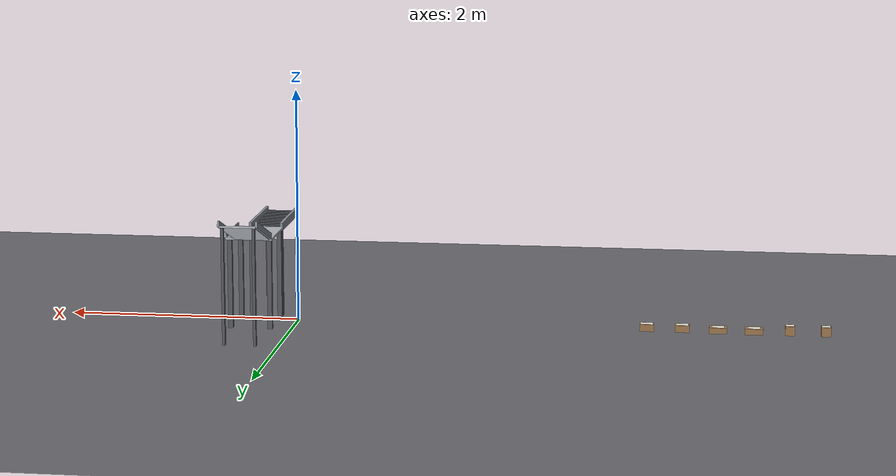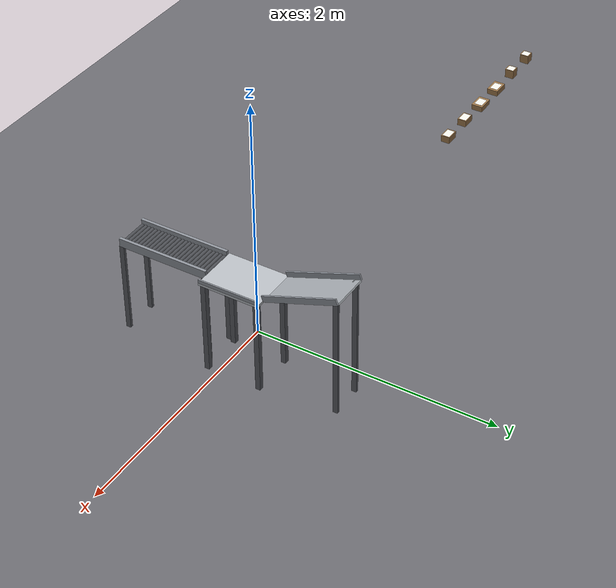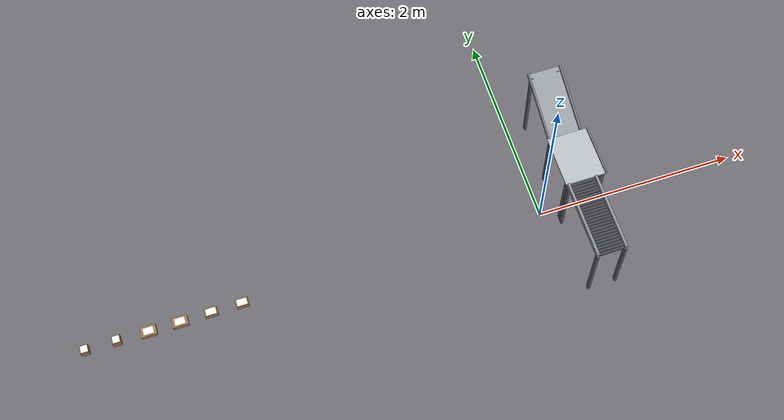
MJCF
<mujoco model="g1_conveyor">
  <include file="g1_upper.xml"/>

  <!-- timestep is overridden at load time by the app (?dt=...) -->
  <option timestep="0.002" integrator="implicitfast" cone="elliptic" impratio="10"/>

  <default>
    <default class="touchable">
      <geom solref="0.01 1" priority="1"/>
    </default>
    <default class="object">
      <geom solref="0.01 1" priority="2"/>
    </default>
    <default class="roller">
      <geom type="cylinder" size="0.014 0.12" quat="0.7071068 0 0.7071068 0" condim="3" friction="0.9 0.005 0.0001" solref="0.01 1" priority="1" material="roller"/>
    </default>
    <default class="label">
      <geom type="box" contype="0" conaffinity="0" density="0"/>
    </default>
  </default>

  <asset>
    <material name="floor" rgba="0.42 0.42 0.44 1"/>
    <material name="roller" rgba="0.3 0.31 0.33 1"/>
    <material name="rail" rgba="0.55 0.57 0.6 1"/>
    <material name="leg" rgba="0.35 0.36 0.38 1"/>
    <material name="plate" rgba="0.72 0.74 0.76 1"/>
    <material name="chute" rgba="0.66 0.68 0.7 1"/>
    <material name="cardboard" rgba="0.62 0.47 0.3 1"/>
    <material name="label" rgba="0.95 0.95 0.92 1"/>
  </asset>

  <worldbody>
    <geom name="floor" type="plane" size="0 0 0.05" material="floor"/>

    <!-- gravity chute: low-friction sheet; priority 3 so its friction, not the parcel's, applies -->
    <body name="chute" pos="0.32 0 0">
      <geom name="chute_slide" type="box" size="0.15 0.3195 0.0075" pos="0 0.6826 0.893" quat="0.984601 0.174819 0 0" solref="0.01 1" priority="3" friction="0.25 0.005 0.0001" material="chute"/>
      <geom name="chute_rail0" type="box" size="0.008 0.3195 0.025" pos="-0.158 0.674 0.9164" quat="0.984601 0.174819 0 0" solref="0.01 1" priority="3" friction="0.25" material="rail"/>
      <geom name="chute_rail1" type="box" size="0.008 0.3195 0.025" pos="0.158 0.674 0.9164" quat="0.984601 0.174819 0 0" solref="0.01 1" priority="3" friction="0.25" material="rail"/>
      <geom type="box" size="0.012 0.02 0.4975" pos="-0.13 0.95 0.4975" material="leg"/>
      <geom type="box" size="0.012 0.02 0.4975" pos="0.13 0.95 0.4975" material="leg"/>
    </body>

    <!-- flat work plate: sheet metal on a frame -->
    <body name="plate" pos="0.35 0.13 0">
      <geom name="plate_top" type="box" size="0.2 0.25 0.01" pos="0 0 0.78" class="touchable" material="plate"/>
      <geom name="plate_lip" type="box" size="0.006 0.25 0.015" pos="0.194 0 0.805" class="touchable" material="rail"/>
      <geom type="box" size="0.02 0.02 0.385" pos="-0.17 -0.22 0.385" material="leg"/>
      <geom type="box" size="0.02 0.02 0.385" pos="-0.17 0.22 0.385" material="leg"/>
      <geom type="box" size="0.02 0.02 0.385" pos="0.17 -0.22 0.385" material="leg"/>
      <geom type="box" size="0.02 0.02 0.385" pos="0.17 0.22 0.385" material="leg"/>
    </body>

    <!-- belt_out: 25 driven rollers, surface at z=0.79, running toward the robot's right (-y) -->
    <body name="belt_out_frame" pos="0.305 0 0">
      <geom class="touchable" type="box" size="0.012 0.375 0.035" pos="-0.135 -0.500 0.786" material="rail"/>
      <geom type="box" size="0.012 0.02 0.376" pos="-0.135 -0.860 0.376" material="leg"/>
      <geom type="box" size="0.012 0.02 0.376" pos="-0.135 -0.140 0.376" material="leg"/>
      <geom class="touchable" type="box" size="0.012 0.375 0.035" pos="0.135 -0.500 0.786" material="rail"/>
      <geom type="box" size="0.012 0.02 0.376" pos="0.135 -0.860 0.376" material="leg"/>
      <geom type="box" size="0.012 0.02 0.376" pos="0.135 -0.140 0.376" material="leg"/>
    </body>
    <body name="belt_out_roller0" pos="0.305 -0.140 0.776">
      <joint name="belt_out_roller0" type="hinge" axis="1 0 0" damping="0.001"/>
      <geom class="roller" name="belt_out_roller0"/>
    </body>
    <body name="belt_out_roller1" pos="0.305 -0.170 0.776">
      <joint name="belt_out_roller1" type="hinge" axis="1 0 0" damping="0.001"/>
      <geom class="roller" name="belt_out_roller1"/>
    </body>
    <body name="belt_out_roller2" pos="0.305 -0.200 0.776">
      <joint name="belt_out_roller2" type="hinge" axis="1 0 0" damping="0.001"/>
      <geom class="roller" name="belt_out_roller2"/>
    </body>
    <body name="belt_out_roller3" pos="0.305 -0.230 0.776">
      <joint name="belt_out_roller3" type="hinge" axis="1 0 0" damping="0.001"/>
      <geom class="roller" name="belt_out_roller3"/>
    </body>
    <body name="belt_out_roller4" pos="0.305 -0.260 0.776">
      <joint name="belt_out_roller4" type="hinge" axis="1 0 0" damping="0.001"/>
      <geom class="roller" name="belt_out_roller4"/>
    </body>
    <body name="belt_out_roller5" pos="0.305 -0.290 0.776">
      <joint name="belt_out_roller5" type="hinge" axis="1 0 0" damping="0.001"/>
      <geom class="roller" name="belt_out_roller5"/>
    </body>
    <body name="belt_out_roller6" pos="0.305 -0.320 0.776">
      <joint name="belt_out_roller6" type="hinge" axis="1 0 0" damping="0.001"/>
      <geom class="roller" name="belt_out_roller6"/>
    </body>
    <body name="belt_out_roller7" pos="0.305 -0.350 0.776">
      <joint name="belt_out_roller7" type="hinge" axis="1 0 0" damping="0.001"/>
      <geom class="roller" name="belt_out_roller7"/>
    </body>
    <body name="belt_out_roller8" pos="0.305 -0.380 0.776">
      <joint name="belt_out_roller8" type="hinge" axis="1 0 0" damping="0.001"/>
      <geom class="roller" name="belt_out_roller8"/>
    </body>
    <body name="belt_out_roller9" pos="0.305 -0.410 0.776">
      <joint name="belt_out_roller9" type="hinge" axis="1 0 0" damping="0.001"/>
      <geom class="roller" name="belt_out_roller9"/>
    </body>
    <body name="belt_out_roller10" pos="0.305 -0.440 0.776">
      <joint name="belt_out_roller10" type="hinge" axis="1 0 0" damping="0.001"/>
      <geom class="roller" name="belt_out_roller10"/>
    </body>
    <body name="belt_out_roller11" pos="0.305 -0.470 0.776">
      <joint name="belt_out_roller11" type="hinge" axis="1 0 0" damping="0.001"/>
      <geom class="roller" name="belt_out_roller11"/>
    </body>
    <body name="belt_out_roller12" pos="0.305 -0.500 0.776">
      <joint name="belt_out_roller12" type="hinge" axis="1 0 0" damping="0.001"/>
      <geom class="roller" name="belt_out_roller12"/>
    </body>
    <body name="belt_out_roller13" pos="0.305 -0.530 0.776">
      <joint name="belt_out_roller13" type="hinge" axis="1 0 0" damping="0.001"/>
      <geom class="roller" name="belt_out_roller13"/>
    </body>
    <body name="belt_out_roller14" pos="0.305 -0.560 0.776">
      <joint name="belt_out_roller14" type="hinge" axis="1 0 0" damping="0.001"/>
      <geom class="roller" name="belt_out_roller14"/>
    </body>
    <body name="belt_out_roller15" pos="0.305 -0.590 0.776">
      <joint name="belt_out_roller15" type="hinge" axis="1 0 0" damping="0.001"/>
      <geom class="roller" name="belt_out_roller15"/>
    </body>
    <body name="belt_out_roller16" pos="0.305 -0.620 0.776">
      <joint name="belt_out_roller16" type="hinge" axis="1 0 0" damping="0.001"/>
      <geom class="roller" name="belt_out_roller16"/>
    </body>
    <body name="belt_out_roller17" pos="0.305 -0.650 0.776">
      <joint name="belt_out_roller17" type="hinge" axis="1 0 0" damping="0.001"/>
      <geom class="roller" name="belt_out_roller17"/>
    </body>
    <body name="belt_out_roller18" pos="0.305 -0.680 0.776">
      <joint name="belt_out_roller18" type="hinge" axis="1 0 0" damping="0.001"/>
      <geom class="roller" name="belt_out_roller18"/>
    </body>
    <body name="belt_out_roller19" pos="0.305 -0.710 0.776">
      <joint name="belt_out_roller19" type="hinge" axis="1 0 0" damping="0.001"/>
      <geom class="roller" name="belt_out_roller19"/>
    </body>
    <body name="belt_out_roller20" pos="0.305 -0.740 0.776">
      <joint name="belt_out_roller20" type="hinge" axis="1 0 0" damping="0.001"/>
      <geom class="roller" name="belt_out_roller20"/>
    </body>
    <body name="belt_out_roller21" pos="0.305 -0.770 0.776">
      <joint name="belt_out_roller21" type="hinge" axis="1 0 0" damping="0.001"/>
      <geom class="roller" name="belt_out_roller21"/>
    </body>
    <body name="belt_out_roller22" pos="0.305 -0.800 0.776">
      <joint name="belt_out_roller22" type="hinge" axis="1 0 0" damping="0.001"/>
      <geom class="roller" name="belt_out_roller22"/>
    </body>
    <body name="belt_out_roller23" pos="0.305 -0.830 0.776">
      <joint name="belt_out_roller23" type="hinge" axis="1 0 0" damping="0.001"/>
      <geom class="roller" name="belt_out_roller23"/>
    </body>
    <body name="belt_out_roller24" pos="0.305 -0.860 0.776">
      <joint name="belt_out_roller24" type="hinge" axis="1 0 0" damping="0.001"/>
      <geom class="roller" name="belt_out_roller24"/>
    </body>

    <body name="package0" pos="-3.0 0 0.031">
      <freejoint name="package0_free"/>
      <geom name="package0" class="object" type="box" size="0.06 0.04 0.03" mass="0.4" condim="4" friction="0.7 0.01 0.0005" material="cardboard"/>
      <geom name="label0" class="label" size="0.05 0.034 0.0002" pos="0 0 0.0302" material="label"/>
    </body>
    <body name="package1" pos="-3.3 0 0.031">
      <freejoint name="package1_free"/>
      <geom name="package1" class="object" type="box" size="0.06 0.04 0.03" mass="0.4" condim="4" friction="0.7 0.01 0.0005" material="cardboard"/>
      <geom name="label1" class="label" size="0.05 0.034 0.0002" pos="0 0 0.0302" material="label"/>
    </body>
    <body name="package2" pos="-3.6 0 0.026">
      <freejoint name="package2_free"/>
      <geom name="package2" class="object" type="box" size="0.075 0.05 0.025" mass="0.4" condim="4" friction="0.7 0.01 0.0005" material="cardboard"/>
      <geom name="label2" class="label" size="0.05 0.035 0.0002" pos="0 0 0.0252" material="label"/>
    </body>
    <body name="package3" pos="-3.9 0 0.026">
      <freejoint name="package3_free"/>
      <geom name="package3" class="object" type="box" size="0.075 0.05 0.025" mass="0.4" condim="4" friction="0.7 0.01 0.0005" material="cardboard"/>
      <geom name="label3" class="label" size="0.05 0.035 0.0002" pos="0 0 0.0252" material="label"/>
    </body>
    <body name="package4" pos="-4.2 0 0.041">
      <freejoint name="package4_free"/>
      <geom name="package4" class="object" type="box" size="0.04 0.04 0.04" mass="0.4" condim="4" friction="0.7 0.01 0.0005" material="cardboard"/>
      <geom name="label4" class="label" size="0.034 0.034 0.0002" pos="0 0 0.0402" material="label"/>
    </body>
    <body name="package5" pos="-4.5 0 0.041">
      <freejoint name="package5_free"/>
      <geom name="package5" class="object" type="box" size="0.04 0.04 0.04" mass="0.4" condim="4" friction="0.7 0.01 0.0005" material="cardboard"/>
      <geom name="label5" class="label" size="0.034 0.034 0.0002" pos="0 0 0.0402" material="label"/>
    </body>
  </worldbody>

  <actuator>
    <velocity name="belt_out_roller0" joint="belt_out_roller0" kv="0.3" ctrlrange="-15 15"/>
    <velocity name="belt_out_roller1" joint="belt_out_roller1" kv="0.3" ctrlrange="-15 15"/>
    <velocity name="belt_out_roller2" joint="belt_out_roller2" kv="0.3" ctrlrange="-15 15"/>
    <velocity name="belt_out_roller3" joint="belt_out_roller3" kv="0.3" ctrlrange="-15 15"/>
    <velocity name="belt_out_roller4" joint="belt_out_roller4" kv="0.3" ctrlrange="-15 15"/>
    <velocity name="belt_out_roller5" joint="belt_out_roller5" kv="0.3" ctrlrange="-15 15"/>
    <velocity name="belt_out_roller6" joint="belt_out_roller6" kv="0.3" ctrlrange="-15 15"/>
    <velocity name="belt_out_roller7" joint="belt_out_roller7" kv="0.3" ctrlrange="-15 15"/>
    <velocity name="belt_out_roller8" joint="belt_out_roller8" kv="0.3" ctrlrange="-15 15"/>
    <velocity name="belt_out_roller9" joint="belt_out_roller9" kv="0.3" ctrlrange="-15 15"/>
    <velocity name="belt_out_roller10" joint="belt_out_roller10" kv="0.3" ctrlrange="-15 15"/>
    <velocity name="belt_out_roller11" joint="belt_out_roller11" kv="0.3" ctrlrange="-15 15"/>
    <velocity name="belt_out_roller12" joint="belt_out_roller12" kv="0.3" ctrlrange="-15 15"/>
    <velocity name="belt_out_roller13" joint="belt_out_roller13" kv="0.3" ctrlrange="-15 15"/>
    <velocity name="belt_out_roller14" joint="belt_out_roller14" kv="0.3" ctrlrange="-15 15"/>
    <velocity name="belt_out_roller15" joint="belt_out_roller15" kv="0.3" ctrlrange="-15 15"/>
    <velocity name="belt_out_roller16" joint="belt_out_roller16" kv="0.3" ctrlrange="-15 15"/>
    <velocity name="belt_out_roller17" joint="belt_out_roller17" kv="0.3" ctrlrange="-15 15"/>
    <velocity name="belt_out_roller18" joint="belt_out_roller18" kv="0.3" ctrlrange="-15 15"/>
    <velocity name="belt_out_roller19" joint="belt_out_roller19" kv="0.3" ctrlrange="-15 15"/>
    <velocity name="belt_out_roller20" joint="belt_out_roller20" kv="0.3" ctrlrange="-15 15"/>
    <velocity name="belt_out_roller21" joint="belt_out_roller21" kv="0.3" ctrlrange="-15 15"/>
    <velocity name="belt_out_roller22" joint="belt_out_roller22" kv="0.3" ctrlrange="-15 15"/>
    <velocity name="belt_out_roller23" joint="belt_out_roller23" kv="0.3" ctrlrange="-15 15"/>
    <velocity name="belt_out_roller24" joint="belt_out_roller24" kv="0.3" ctrlrange="-15 15"/>
  </actuator>
</mujoco>

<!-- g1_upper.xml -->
<!-- Generated by scripts/build-g1-mjcf.py from MuJoCo Menagerie unitree_g1/g1_with_hands.xml (commit 0059d4335f8156206f63a35662313385f7ad6d74, BSD-3-Clause, see LICENSE-g1). Do not edit by hand. -->
<mujoco model="g1_29dof_with_hand_fixed_base">
  <compiler angle="radian" meshdir="meshes" />
  <option integrator="implicitfast" />
  <default>
    <default class="g1">
      <site rgba="1 0 0 1" size="0.01" group="5" />
      <joint armature="0.01" frictionloss="0.3" />
      <position inheritrange="1" />
      <default class="visual">
        <geom group="2" type="mesh" contype="0" conaffinity="0" density="0" material="metal" />
      </default>
      <default class="collision">
        <geom group="3" type="mesh" />
        <default class="foot">
          <geom type="sphere" size="0.005" priority="1" friction="0.6" condim="3" />
        </default>
      </default>
    </default>
  </default>
  <asset>
    <material name="black" rgba="0.2 0.2 0.2 1" />
    <material name="metal" rgba="0.7 0.7 0.7 1" />
    <mesh name="head_link_hull" file="hulls/head_link.STL" />
    <mesh name="left_elbow_link_hull" file="hulls/left_elbow_link.STL" />
    <mesh name="left_hand_index_0_link_hull" file="hulls/left_hand_index_0_link.STL" />
    <mesh name="left_hand_index_1_link_hull" file="hulls/left_hand_index_1_link.STL" />
    <mesh name="left_hand_middle_0_link_hull" file="hulls/left_hand_middle_0_link.STL" />
    <mesh name="left_hand_middle_1_link_hull" file="hulls/left_hand_middle_1_link.STL" />
    <mesh name="left_hand_palm_link_hull" file="hulls/left_hand_palm_link.STL" />
    <mesh name="left_hand_thumb_0_link_hull" file="hulls/left_hand_thumb_0_link.STL" />
    <mesh name="left_hand_thumb_2_link_hull" file="hulls/left_hand_thumb_2_link.STL" />
    <mesh name="left_shoulder_yaw_link_hull" file="hulls/left_shoulder_yaw_link.STL" />
    <mesh name="left_wrist_pitch_link_hull" file="hulls/left_wrist_pitch_link.STL" />
    <mesh name="left_wrist_roll_link_hull" file="hulls/left_wrist_roll_link.STL" />
    <mesh name="left_wrist_yaw_link_hull" file="hulls/left_wrist_yaw_link.STL" />
    <mesh name="pelvis_contour_link_hull" file="hulls/pelvis_contour_link.STL" />
    <mesh name="right_elbow_link_hull" file="hulls/right_elbow_link.STL" />
    <mesh name="right_hand_index_0_link_hull" file="hulls/right_hand_index_0_link.STL" />
    <mesh name="right_hand_index_1_link_hull" file="hulls/right_hand_index_1_link.STL" />
    <mesh name="right_hand_middle_0_link_hull" file="hulls/right_hand_middle_0_link.STL" />
    <mesh name="right_hand_middle_1_link_hull" file="hulls/right_hand_middle_1_link.STL" />
    <mesh name="right_hand_palm_link_hull" file="hulls/right_hand_palm_link.STL" />
    <mesh name="right_hand_thumb_0_link_hull" file="hulls/right_hand_thumb_0_link.STL" />
    <mesh name="right_hand_thumb_2_link_hull" file="hulls/right_hand_thumb_2_link.STL" />
    <mesh name="right_shoulder_yaw_link_hull" file="hulls/right_shoulder_yaw_link.STL" />
    <mesh name="right_wrist_pitch_link_hull" file="hulls/right_wrist_pitch_link.STL" />
    <mesh name="right_wrist_roll_link_hull" file="hulls/right_wrist_roll_link.STL" />
    <mesh name="right_wrist_yaw_link_hull" file="hulls/right_wrist_yaw_link.STL" />
    <mesh name="torso_link_hull" file="hulls/torso_link.STL" />
  </asset>
  <worldbody>
    <light pos="1 0 3.5" dir="0 0 -1" directional="true" />
    <body name="pelvis" pos="0 0 0.793" childclass="g1">
      <inertial pos="0 0 -0.07605" quat="1 0 -0.000399148 0" mass="3.813" diaginertia="0.010549 0.0093089 0.0079184" />
      <geom class="collision" mesh="pelvis_contour_link_hull" />
      <site name="imu_in_pelvis" size="0.01" pos="0.04525 0 -0.08339" />
      <body name="left_hip_pitch_link" pos="0 0.064452 -0.1027">
        <inertial pos="0.002741 0.047791 -0.02606" quat="0.954862 0.293964 0.0302556 0.030122" mass="1.35" diaginertia="0.00181517 0.00153422 0.00116212" />
        <body name="left_hip_roll_link" pos="0 0.052 -0.030465" quat="0.996179 0 -0.0873386 0">
          <inertial pos="0.029812 -0.001045 -0.087934" quat="0.977808 -1.97119e-05 0.205576 -0.0403793" mass="1.52" diaginertia="0.00254986 0.00241169 0.00148755" />
          <body name="left_hip_yaw_link" pos="0.025001 0 -0.12412">
            <inertial pos="-0.057709 -0.010981 -0.15078" quat="0.600598 0.15832 0.223482 0.751181" mass="1.702" diaginertia="0.00776166 0.00717575 0.00160139" />
            <body name="left_knee_link" pos="-0.078273 0.0021489 -0.17734" quat="0.996179 0 0.0873386 0">
              <inertial pos="0.005457 0.003964 -0.12074" quat="0.923418 -0.0327699 0.0158246 0.382067" mass="1.932" diaginertia="0.0113804 0.0112778 0.00146458" />
              <body name="left_ankle_pitch_link" pos="0 -9.4445e-05 -0.30001">
                <inertial pos="-0.007269 0 0.011137" quat="0.603053 0.369225 0.369225 0.603053" mass="0.074" diaginertia="1.89e-05 1.40805e-05 6.9195e-06" />
                <body name="left_ankle_roll_link" pos="0 0 -0.017558">
                  <inertial pos="0.026505 0 -0.016425" quat="-0.000481092 0.728482 -0.000618967 0.685065" mass="0.608" diaginertia="0.00167218 0.0016161 0.000217621" />
                </body>
              </body>
            </body>
          </body>
        </body>
      </body>
      <body name="right_hip_pitch_link" pos="0 -0.064452 -0.1027">
        <inertial pos="0.002741 -0.047791 -0.02606" quat="0.954862 -0.293964 0.0302556 -0.030122" mass="1.35" diaginertia="0.00181517 0.00153422 0.00116212" />
        <body name="right_hip_roll_link" pos="0 -0.052 -0.030465" quat="0.996179 0 -0.0873386 0">
          <inertial pos="0.029812 0.001045 -0.087934" quat="0.977808 1.97119e-05 0.205576 0.0403793" mass="1.52" diaginertia="0.00254986 0.00241169 0.00148755" />
          <body name="right_hip_yaw_link" pos="0.025001 0 -0.12412">
            <inertial pos="-0.057709 0.010981 -0.15078" quat="0.751181 0.223482 0.15832 0.600598" mass="1.702" diaginertia="0.00776166 0.00717575 0.00160139" />
            <body name="right_knee_link" pos="-0.078273 -0.0021489 -0.17734" quat="0.996179 0 0.0873386 0">
              <inertial pos="0.005457 -0.003964 -0.12074" quat="0.923439 0.0345276 0.0116333 -0.382012" mass="1.932" diaginertia="0.011374 0.0112843 0.00146452" />
              <body name="right_ankle_pitch_link" pos="0 9.4445e-05 -0.30001">
                <inertial pos="-0.007269 0 0.011137" quat="0.603053 0.369225 0.369225 0.603053" mass="0.074" diaginertia="1.89e-05 1.40805e-05 6.9195e-06" />
                <body name="right_ankle_roll_link" pos="0 0 -0.017558">
                  <inertial pos="0.026505 0 -0.016425" quat="0.000481092 0.728482 0.000618967 0.685065" mass="0.608" diaginertia="0.00167218 0.0016161 0.000217621" />
                </body>
              </body>
            </body>
          </body>
        </body>
      </body>
      <body name="waist_yaw_link">
        <inertial pos="0.003494 0.000233 0.018034" quat="0.289697 0.591001 -0.337795 0.672821" mass="0.214" diaginertia="0.000163531 0.000107714 0.000102205" />
        <joint name="waist_yaw_joint" axis="0 0 1" range="-2.618 2.618" actuatorfrcrange="-88 88" />
        <body name="waist_roll_link" pos="-0.0039635 0 0.044">
          <inertial pos="0 2.3e-05 0" quat="0.5 0.5 -0.5 0.5" mass="0.086" diaginertia="8.245e-06 7.079e-06 6.339e-06" />
          <joint name="waist_roll_joint" axis="1 0 0" range="-0.52 0.52" actuatorfrcrange="-50 50" />
          <body name="torso_link">
            <inertial pos="0.00203158 0.000339683 0.184568" quat="0.999803 -6.03319e-05 0.0198256 0.00131986" mass="7.818" diaginertia="0.121847 0.109825 0.0273735" />
            <joint name="waist_pitch_joint" axis="0 1 0" range="-0.52 0.52" actuatorfrcrange="-50 50" />
            <geom class="collision" mesh="torso_link_hull" />
            <geom pos="0.0039635 0 -0.044" class="collision" mesh="head_link_hull" />
            <site name="imu_in_torso" size="0.01" pos="-0.03959 -0.00224 0.14792" />
            <body name="left_shoulder_pitch_link" pos="0.0039563 0.10022 0.24778" quat="0.990264 0.139201 1.38722e-05 -9.86868e-05" gravcomp="1">
              <inertial pos="0 0.035892 -0.011628" quat="0.654152 0.0130458 -0.326267 0.68225" mass="0.718" diaginertia="0.000465864 0.000432842 0.000406394" />
              <joint name="left_shoulder_pitch_joint" axis="0 1 0" range="-3.0892 2.6704" actuatorfrcrange="-25 25" />
              <geom size="0.03 0.025" pos="0 0.04 -0.01" quat="0.707107 0 0.707107 0" type="cylinder" class="collision" />
              <body name="left_shoulder_roll_link" pos="0 0.038 -0.013831" quat="0.990268 -0.139172 0 0" gravcomp="1">
                <inertial pos="-0.000227 0.00727 -0.063243" quat="0.701256 -0.0196223 -0.00710317 0.712604" mass="0.643" diaginertia="0.000691311 0.000618011 0.000388977" />
                <joint name="left_shoulder_roll_joint" axis="1 0 0" range="-1.5882 2.2515" actuatorfrcrange="-25 25" />
                <geom size="0.03 0.015" pos="-0.004 0.006 -0.053" type="cylinder" class="collision" />
                <body name="left_shoulder_yaw_link" pos="0 0.00624 -0.1032" gravcomp="1">
                  <inertial pos="0.010773 -0.002949 -0.072009" quat="0.716879 -0.0964829 -0.0679942 0.687134" mass="0.734" diaginertia="0.00106187 0.00103217 0.000400661" />
                  <joint name="left_shoulder_yaw_joint" axis="0 0 1" range="-2.618 2.618" actuatorfrcrange="-25 25" />
                  <geom class="collision" mesh="left_shoulder_yaw_link_hull" />
                  <body name="left_elbow_link" pos="0.015783 0 -0.080518" gravcomp="1">
                    <inertial pos="0.064956 0.004454 -0.010062" quat="0.541765 0.636132 0.388821 0.388129" mass="0.6" diaginertia="0.000443035 0.000421612 0.000259353" />
                    <joint name="left_elbow_joint" axis="0 1 0" range="-1.0472 2.0944" actuatorfrcrange="-25 25" />
                    <geom class="collision" mesh="left_elbow_link_hull" />
                    <body name="left_wrist_roll_link" pos="0.1 0.00188791 -0.01" gravcomp="1">
                      <inertial pos="0.0171394 0.000537591 4.8864e-07" quat="0.575338 0.411667 -0.574906 0.411094" mass="0.085445" diaginertia="5.48211e-05 4.96646e-05 3.57798e-05" />
                      <joint name="left_wrist_roll_joint" axis="1 0 0" range="-1.97222 1.97222" actuatorfrcrange="-25 25" />
                      <geom class="collision" mesh="left_wrist_roll_link_hull" />
                      <body name="left_wrist_pitch_link" pos="0.038 0 0" gravcomp="1">
                        <inertial pos="0.0229999 -0.00111685 -0.00111658" quat="0.249998 0.661363 0.293036 0.643608" mass="0.48405" diaginertia="0.000430353 0.000429873 0.000164648" />
                        <joint name="left_wrist_pitch_joint" axis="0 1 0" range="-1.61443 1.61443" actuatorfrcrange="-5 5" />
                        <geom class="collision" mesh="left_wrist_pitch_link_hull" />
                        <body name="left_wrist_yaw_link" pos="0.046 0 0" gravcomp="1">
                          <inertial pos="0.0885506 0.00212216 -0.000374562" quat="0.487149 0.493844 0.513241 0.505358" mass="0.457415" diaginertia="0.00105989 0.000895419 0.000323842" />
                          <joint name="left_wrist_yaw_joint" axis="0 0 1" range="-1.61443 1.61443" actuatorfrcrange="-5 5" />
                          <geom class="collision" mesh="left_wrist_yaw_link_hull" />
                          <geom pos="0.0415 0.003 0" quat="1 0 0 0" class="collision" mesh="left_hand_palm_link_hull" />
                          <body name="left_hand_thumb_0_link" pos="0.067 0.003 0" gravcomp="1">
                            <inertial pos="-0.000884246 -0.00863407 0.000944293" quat="0.462991 0.643965 -0.460173 0.398986" mass="0.0862366" diaginertia="1.6546e-05 1.60058e-05 1.43741e-05" />
                            <joint name="left_hand_thumb_0_joint" axis="0 1 0" range="-1.0472 1.0472" actuatorfrcrange="-2.45 2.45" frictionloss="0.01" armature="0.0005" />
                            <geom class="collision" mesh="left_hand_thumb_0_link_hull" />
                            <body name="left_hand_thumb_1_link" pos="-0.0025 -0.0193 0" gravcomp="1">
                              <inertial pos="-0.000827888 -0.0354744 -0.0003809" quat="0.685598 0.705471 -0.15207 0.0956069" mass="0.0588507" diaginertia="1.28514e-05 1.22902e-05 5.9666e-06" />
                              <joint name="left_hand_thumb_1_joint" axis="0 0 1" range="-0.724312 1.0472" actuatorfrcrange="-1.4 1.4" frictionloss="0.01" armature="0.0005" />
                              <geom size="0.01 0.015 0.01" pos="-0.001 -0.032 0" type="box" class="collision" />
                              <body name="left_hand_thumb_2_link" pos="0 -0.0458 0" gravcomp="1">
                                <inertial pos="-0.00171735 -0.0262819 0.000107789" quat="0.703174 0.710977 -0.00017564 -0.00766553" mass="0.0203063" diaginertia="4.61314e-06 3.86645e-06 1.53495e-06" />
                                <joint name="left_hand_thumb_2_joint" axis="0 0 1" range="0 1.74533" actuatorfrcrange="-1.4 1.4" frictionloss="0.01" armature="0.0005" />
                                <geom class="collision" mesh="left_hand_thumb_2_link_hull" />
                              </body>
                            </body>
                          </body>
                          <body name="left_hand_middle_0_link" pos="0.1192 0.0046 -0.0285" gravcomp="1">
                            <inertial pos="0.0354744 0.000827888 0.0003809" quat="0.391313 0.552395 0.417187 0.606373" mass="0.0588507" diaginertia="1.28514e-05 1.22902e-05 5.9666e-06" />
                            <joint name="left_hand_middle_0_joint" axis="0 0 1" range="-1.5708 0" actuatorfrcrange="-1.4 1.4" frictionloss="0.01" armature="0.0005" />
                            <geom class="collision" mesh="left_hand_middle_0_link_hull" />
                            <body name="left_hand_middle_1_link" pos="0.0458 0 0" gravcomp="1">
                              <inertial pos="0.0262819 0.00171735 -0.000107789" quat="0.502612 0.491799 0.502639 0.502861" mass="0.0203063" diaginertia="4.61314e-06 3.86645e-06 1.53495e-06" />
                              <joint name="left_hand_middle_1_joint" axis="0 0 1" range="-1.74533 0" actuatorfrcrange="-1.4 1.4" frictionloss="0.01" armature="0.0005" />
                              <geom class="collision" mesh="left_hand_middle_1_link_hull" />
                            </body>
                          </body>
                          <body name="left_hand_index_0_link" pos="0.1192 0.0046 0.0285" gravcomp="1">
                            <inertial pos="0.0354744 0.000827888 0.0003809" quat="0.391313 0.552395 0.417187 0.606373" mass="0.0588507" diaginertia="1.28514e-05 1.22902e-05 5.9666e-06" />
                            <joint name="left_hand_index_0_joint" axis="0 0 1" range="-1.5708 0" actuatorfrcrange="-1.4 1.4" frictionloss="0.01" armature="0.0005" />
                            <geom class="collision" mesh="left_hand_index_0_link_hull" />
                            <body name="left_hand_index_1_link" pos="0.0458 0 0" gravcomp="1">
                              <inertial pos="0.0262819 0.00171735 -0.000107789" quat="0.502612 0.491799 0.502639 0.502861" mass="0.0203063" diaginertia="4.61314e-06 3.86645e-06 1.53495e-06" />
                              <joint name="left_hand_index_1_joint" axis="0 0 1" range="-1.74533 0" actuatorfrcrange="-1.4 1.4" frictionloss="0.01" armature="0.0005" />
                              <geom class="collision" mesh="left_hand_index_1_link_hull" />
                            </body>
                          </body>
                          <site name="left_palm" pos="0.0415 0.003 0" size="0.005" group="5" />
                          <site name="left_grip" pos="0.115 -0.035 0" size="0.005" group="5" />
                        </body>
                      </body>
                    </body>
                  </body>
                </body>
              </body>
            </body>
            <body name="right_shoulder_pitch_link" pos="0.0039563 -0.10021 0.24778" quat="0.990264 -0.139201 1.38722e-05 9.86868e-05" gravcomp="1">
              <inertial pos="0 -0.035892 -0.011628" quat="0.68225 -0.326267 0.0130458 0.654152" mass="0.718" diaginertia="0.000465864 0.000432842 0.000406394" />
              <joint name="right_shoulder_pitch_joint" axis="0 1 0" range="-3.0892 2.6704" actuatorfrcrange="-25 25" />
              <geom size="0.03 0.025" pos="0 -0.04 -0.01" quat="0.707107 0 0.707107 0" type="cylinder" class="collision" />
              <body name="right_shoulder_roll_link" pos="0 -0.038 -0.013831" quat="0.990268 0.139172 0 0" gravcomp="1">
                <inertial pos="-0.000227 -0.00727 -0.063243" quat="0.712604 -0.00710317 -0.0196223 0.701256" mass="0.643" diaginertia="0.000691311 0.000618011 0.000388977" />
                <joint name="right_shoulder_roll_joint" axis="1 0 0" range="-2.2515 1.5882" actuatorfrcrange="-25 25" />
                <geom size="0.03 0.015" pos="-0.004 -0.006 -0.053" type="cylinder" class="collision" />
                <body name="right_shoulder_yaw_link" pos="0 -0.00624 -0.1032" gravcomp="1">
                  <inertial pos="0.010773 0.002949 -0.072009" quat="0.687134 -0.0679942 -0.0964829 0.716879" mass="0.734" diaginertia="0.00106187 0.00103217 0.000400661" />
                  <joint name="right_shoulder_yaw_joint" axis="0 0 1" range="-2.618 2.618" actuatorfrcrange="-25 25" />
                  <geom class="collision" mesh="right_shoulder_yaw_link_hull" />
                  <body name="right_elbow_link" pos="0.015783 0 -0.080518" gravcomp="1">
                    <inertial pos="0.064956 -0.004454 -0.010062" quat="0.388129 0.388821 0.636132 0.541765" mass="0.6" diaginertia="0.000443035 0.000421612 0.000259353" />
                    <joint name="right_elbow_joint" axis="0 1 0" range="-1.0472 2.0944" actuatorfrcrange="-25 25" />
                    <geom class="collision" mesh="right_elbow_link_hull" />
                    <body name="right_wrist_roll_link" pos="0.1 -0.00188791 -0.01" gravcomp="1">
                      <inertial pos="0.0171394 -0.000537591 4.8864e-07" quat="0.411667 0.575338 -0.411094 0.574906" mass="0.085445" diaginertia="5.48211e-05 4.96646e-05 3.57798e-05" />
                      <joint name="right_wrist_roll_joint" axis="1 0 0" range="-1.97222 1.97222" actuatorfrcrange="-25 25" />
                      <geom class="collision" mesh="right_wrist_roll_link_hull" />
                      <body name="right_wrist_pitch_link" pos="0.038 0 0" gravcomp="1">
                        <inertial pos="0.0229999 0.00111685 -0.00111658" quat="0.643608 0.293036 0.661363 0.249998" mass="0.48405" diaginertia="0.000430353 0.000429873 0.000164648" />
                        <joint name="right_wrist_pitch_joint" axis="0 1 0" range="-1.61443 1.61443" actuatorfrcrange="-5 5" />
                        <geom class="collision" mesh="right_wrist_pitch_link_hull" />
                        <body name="right_wrist_yaw_link" pos="0.046 0 0" gravcomp="1">
                          <inertial pos="0.0885506 -0.00212216 -0.000374562" quat="0.505358 0.513241 0.493844 0.487149" mass="0.457415" diaginertia="0.00105989 0.000895419 0.000323842" />
                          <joint name="right_wrist_yaw_joint" axis="0 0 1" range="-1.61443 1.61443" actuatorfrcrange="-5 5" />
                          <geom class="collision" mesh="right_wrist_yaw_link_hull" />
                          <geom pos="0.0415 -0.003 0" quat="1 0 0 0" class="collision" mesh="right_hand_palm_link_hull" />
                          <body name="right_hand_thumb_0_link" pos="0.067 -0.003 0" gravcomp="1">
                            <inertial pos="-0.000884246 0.00863407 0.000944293" quat="0.643965 0.462991 -0.398986 0.460173" mass="0.0862366" diaginertia="1.6546e-05 1.60058e-05 1.43741e-05" />
                            <joint name="right_hand_thumb_0_joint" axis="0 1 0" range="-1.0472 1.0472" actuatorfrcrange="-2.45 2.45" frictionloss="0.01" armature="0.0005" />
                            <geom class="collision" mesh="right_hand_thumb_0_link_hull" />
                            <body name="right_hand_thumb_1_link" pos="-0.0025 0.0193 0" gravcomp="1">
                              <inertial pos="-0.000827888 0.0354744 -0.0003809" quat="0.705471 0.685598 -0.0956069 0.15207" mass="0.0588507" diaginertia="1.28514e-05 1.22902e-05 5.9666e-06" />
                              <joint name="right_hand_thumb_1_joint" axis="0 0 1" range="-1.0472 0.724312" actuatorfrcrange="-1.4 1.4" frictionloss="0.01" armature="0.0005" />
                              <geom size="0.01 0.015 0.01" pos="-0.001 0.032 0" type="box" class="collision" />
                              <body name="right_hand_thumb_2_link" pos="0 0.0458 0" gravcomp="1">
                                <inertial pos="-0.00171735 0.0262819 0.000107789" quat="0.710977 0.703174 0.00766553 0.00017564" mass="0.0203063" diaginertia="4.61314e-06 3.86645e-06 1.53495e-06" />
                                <joint name="right_hand_thumb_2_joint" axis="0 0 1" range="-1.74533 0" actuatorfrcrange="-1.4 1.4" frictionloss="0.01" armature="0.0005" />
                                <geom class="collision" mesh="right_hand_thumb_2_link_hull" />
                              </body>
                            </body>
                          </body>
                          <body name="right_hand_middle_0_link" pos="0.1192 -0.0046 -0.0285" gravcomp="1">
                            <inertial pos="0.0354744 -0.000827888 0.0003809" quat="0.606373 0.417187 0.552395 0.391313" mass="0.0588507" diaginertia="1.28514e-05 1.22902e-05 5.9666e-06" />
                            <joint name="right_hand_middle_0_joint" axis="0 0 1" range="0 1.5708" actuatorfrcrange="-1.4 1.4" frictionloss="0.01" armature="0.0005" />
                            <geom class="collision" mesh="right_hand_middle_0_link_hull" />
                            <body name="right_hand_middle_1_link" pos="0.0458 0 0" gravcomp="1">
                              <inertial pos="0.0262819 -0.00171735 -0.000107789" quat="0.502861 0.502639 0.491799 0.502612" mass="0.0203063" diaginertia="4.61314e-06 3.86645e-06 1.53495e-06" />
                              <joint name="right_hand_middle_1_joint" axis="0 0 1" range="0 1.74533" actuatorfrcrange="-1.4 1.4" frictionloss="0.01" armature="0.0005" />
                              <geom class="collision" mesh="right_hand_middle_1_link_hull" />
                            </body>
                          </body>
                          <body name="right_hand_index_0_link" pos="0.1192 -0.0046 0.0285" gravcomp="1">
                            <inertial pos="0.0354744 -0.000827888 0.0003809" quat="0.606373 0.417187 0.552395 0.391313" mass="0.0588507" diaginertia="1.28514e-05 1.22902e-05 5.9666e-06" />
                            <joint name="right_hand_index_0_joint" axis="0 0 1" range="0 1.5708" actuatorfrcrange="-1.4 1.4" frictionloss="0.01" armature="0.0005" />
                            <geom class="collision" mesh="right_hand_index_0_link_hull" />
                            <body name="right_hand_index_1_link" pos="0.0458 0 0" gravcomp="1">
                              <inertial pos="0.0262819 -0.00171735 -0.000107789" quat="0.502861 0.502639 0.491799 0.502612" mass="0.0203063" diaginertia="4.61314e-06 3.86645e-06 1.53495e-06" />
                              <joint name="right_hand_index_1_joint" axis="0 0 1" range="0 1.74533" actuatorfrcrange="-1.4 1.4" frictionloss="0.01" armature="0.0005" />
                              <geom class="collision" mesh="right_hand_index_1_link_hull" />
                            </body>
                          </body>
                          <site name="right_palm" pos="0.0415 -0.003 0" size="0.005" group="5" />
                          <site name="right_grip" pos="0.115 0.035 0" size="0.005" group="5" />
                        </body>
                      </body>
                    </body>
                  </body>
                </body>
              </body>
            </body>
            <site name="eye" pos="0.0002835 0.00003 0.40618" size="0.005" group="5" />
            <site name="head_cam" pos="0.0576235 0.01753 0.41987" size="0.005" group="5" euler="0 0.8307767 0" />
          </body>
        </body>
      </body>
    </body>
  </worldbody>
  <actuator>
    <position class="g1" name="waist_yaw_joint" joint="waist_yaw_joint" kp="300" kv="3" />
    <position class="g1" name="waist_roll_joint" joint="waist_roll_joint" kp="300" kv="3" />
    <position class="g1" name="waist_pitch_joint" joint="waist_pitch_joint" kp="300" kv="3" />
    <position class="g1" name="left_shoulder_pitch_joint" joint="left_shoulder_pitch_joint" kp="80" kv="3" />
    <position class="g1" name="left_shoulder_roll_joint" joint="left_shoulder_roll_joint" kp="80" kv="3" />
    <position class="g1" name="left_shoulder_yaw_joint" joint="left_shoulder_yaw_joint" kp="80" kv="3" />
    <position class="g1" name="left_elbow_joint" joint="left_elbow_joint" kp="80" kv="3" />
    <position class="g1" name="left_wrist_roll_joint" joint="left_wrist_roll_joint" kp="40" kv="1.5" />
    <position class="g1" name="left_wrist_pitch_joint" joint="left_wrist_pitch_joint" kp="40" kv="1.5" />
    <position class="g1" name="left_wrist_yaw_joint" joint="left_wrist_yaw_joint" kp="40" kv="1.5" />
    <position class="g1" name="left_hand_thumb_0_joint" joint="left_hand_thumb_0_joint" kp="1.5" kv="0.2" />
    <position class="g1" name="left_hand_thumb_1_joint" joint="left_hand_thumb_1_joint" kp="1.5" kv="0.2" />
    <position class="g1" name="left_hand_thumb_2_joint" joint="left_hand_thumb_2_joint" kp="1.5" kv="0.2" />
    <position class="g1" name="left_hand_middle_0_joint" joint="left_hand_middle_0_joint" kp="1.5" kv="0.2" />
    <position class="g1" name="left_hand_middle_1_joint" joint="left_hand_middle_1_joint" kp="1.5" kv="0.2" />
    <position class="g1" name="left_hand_index_0_joint" joint="left_hand_index_0_joint" kp="1.5" kv="0.2" />
    <position class="g1" name="left_hand_index_1_joint" joint="left_hand_index_1_joint" kp="1.5" kv="0.2" />
    <position class="g1" name="right_shoulder_pitch_joint" joint="right_shoulder_pitch_joint" kp="80" kv="3" />
    <position class="g1" name="right_shoulder_roll_joint" joint="right_shoulder_roll_joint" kp="80" kv="3" />
    <position class="g1" name="right_shoulder_yaw_joint" joint="right_shoulder_yaw_joint" kp="80" kv="3" />
    <position class="g1" name="right_elbow_joint" joint="right_elbow_joint" kp="80" kv="3" />
    <position class="g1" name="right_wrist_roll_joint" joint="right_wrist_roll_joint" kp="40" kv="1.5" />
    <position class="g1" name="right_wrist_pitch_joint" joint="right_wrist_pitch_joint" kp="40" kv="1.5" />
    <position class="g1" name="right_wrist_yaw_joint" joint="right_wrist_yaw_joint" kp="40" kv="1.5" />
    <position class="g1" name="right_hand_thumb_0_joint" joint="right_hand_thumb_0_joint" kp="1.5" kv="0.2" />
    <position class="g1" name="right_hand_thumb_1_joint" joint="right_hand_thumb_1_joint" kp="1.5" kv="0.2" />
    <position class="g1" name="right_hand_thumb_2_joint" joint="right_hand_thumb_2_joint" kp="1.5" kv="0.2" />
    <position class="g1" name="right_hand_index_0_joint" joint="right_hand_index_0_joint" kp="1.5" kv="0.2" />
    <position class="g1" name="right_hand_index_1_joint" joint="right_hand_index_1_joint" kp="1.5" kv="0.2" />
    <position class="g1" name="right_hand_middle_0_joint" joint="right_hand_middle_0_joint" kp="1.5" kv="0.2" />
    <position class="g1" name="right_hand_middle_1_joint" joint="right_hand_middle_1_joint" kp="1.5" kv="0.2" />
  </actuator>
</mujoco>
